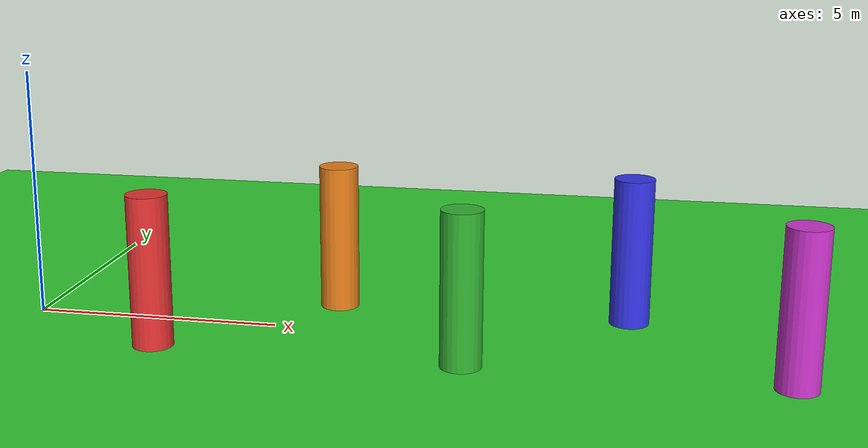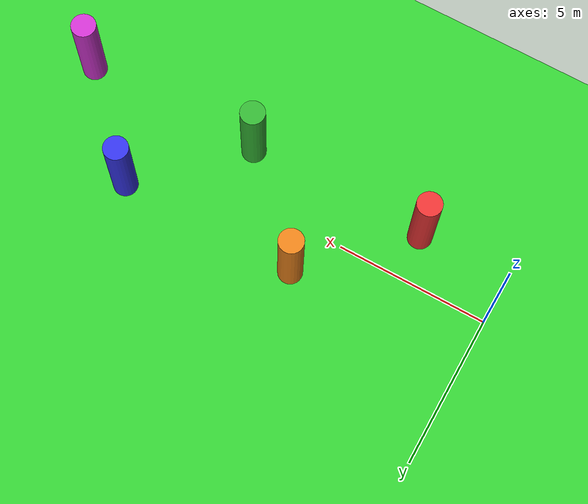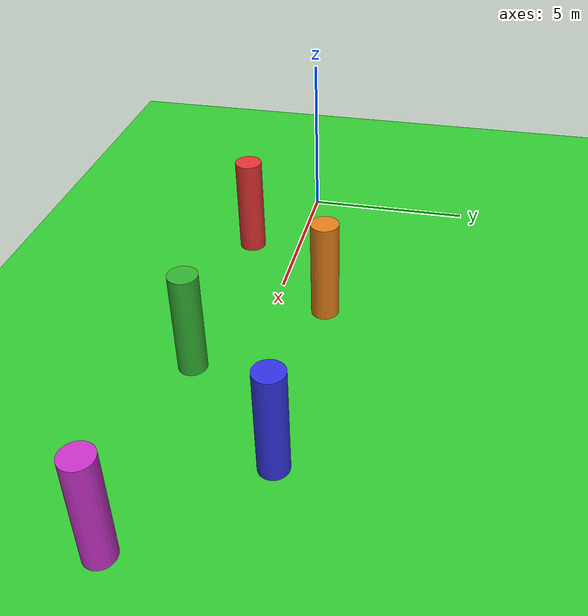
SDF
<sdf version="1.5">
 <world name="mrsim">
  <plugin filename="gz-sim-sensors-system" name="gz::sim::systems::Sensors">
   <render_engine>ogre2</render_engine>
  </plugin>
  <physics name="1ms" type="unused">
   <max_step_size>0.002000</max_step_size>
   <real_time_factor>1.000000</real_time_factor>
   <real_time_update_rate>500.000000</real_time_update_rate>
   <gravity>0 0 -9.81</gravity>
   <magnetic_field>23.816e-6 -0.41e-6 -39.829e-6</magnetic_field>
  </physics>
  <light type="directional" name="sun">
   <pose>0 0 10 0 0 0</pose>
   <diffuse>0.8 0.8 0.8 1</diffuse>
   <specular>0.2 0.2 0.2 1</specular>
   <attenuation>
    <range>1000</range>
    <constant>0.9</constant>
    <linear>0.01</linear>
    <quadratic>0.001</quadratic>
   </attenuation>
   <direction>-0.5 0.1 -0.9</direction>
  </light>
  <model name="ground_plane">
   <static>true</static>
   <link name="link">
    <collision name="collision">
     <geometry><plane><normal>0 0 1.0</normal><size>100 100</size></plane></geometry>
    </collision>
    <visual name="visual">
     <geometry><plane><normal>0 0 1.0</normal><size>100 100</size></plane></geometry>
     <material>
      <ambient>0.2 0.8 0.2 1</ambient>
      <diffuse>0.2 0.8 0.2 1</diffuse>
      <specular>0.2 0.8 0.2 1</specular>
     </material>
    </visual>
   </link>
  </model>
  <model name="obstacle_1">
   <static>true</static>
   <pose>3.0 -1.5 1.5 0 0 0</pose>
   <link name="link">
    <collision name="collision">
     <geometry><cylinder><radius>0.4</radius><length>3.0</length></cylinder></geometry>
    </collision>
    <visual name="visual">
     <geometry><cylinder><radius>0.4</radius><length>3.0</length></cylinder></geometry>
     <material><ambient>0.9 0.2 0.2 1</ambient><diffuse>0.9 0.2 0.2 1</diffuse></material>
    </visual>
   </link>
  </model>
  <model name="obstacle_2">
   <static>true</static>
   <pose>6.0 1.5 1.5 0 0 0</pose>
   <link name="link">
    <collision name="collision">
     <geometry><cylinder><radius>0.4</radius><length>3.0</length></cylinder></geometry>
    </collision>
    <visual name="visual">
     <geometry><cylinder><radius>0.4</radius><length>3.0</length></cylinder></geometry>
     <material><ambient>0.9 0.5 0.1 1</ambient><diffuse>0.9 0.5 0.1 1</diffuse></material>
    </visual>
   </link>
  </model>
  <model name="obstacle_3">
   <static>true</static>
   <pose>9.0 -1.5 1.5 0 0 0</pose>
   <link name="link">
    <collision name="collision">
     <geometry><cylinder><radius>0.4</radius><length>3.0</length></cylinder></geometry>
    </collision>
    <visual name="visual">
     <geometry><cylinder><radius>0.4</radius><length>3.0</length></cylinder></geometry>
     <material><ambient>0.2 0.7 0.2 1</ambient><diffuse>0.2 0.7 0.2 1</diffuse></material>
    </visual>
   </link>
  </model>
  <model name="obstacle_4">
   <static>true</static>
   <pose>12.0 1.5 1.5 0 0 0</pose>
   <link name="link">
    <collision name="collision">
     <geometry><cylinder><radius>0.4</radius><length>3.0</length></cylinder></geometry>
    </collision>
    <visual name="visual">
     <geometry><cylinder><radius>0.4</radius><length>3.0</length></cylinder></geometry>
     <material><ambient>0.2 0.2 0.9 1</ambient><diffuse>0.2 0.2 0.9 1</diffuse></material>
    </visual>
   </link>
  </model>
  <model name="obstacle_5">
   <static>true</static>
   <pose>15.0 -1.5 1.5 0 0 0</pose>
   <link name="link">
    <collision name="collision">
     <geometry><cylinder><radius>0.4</radius><length>3.0</length></cylinder></geometry>
    </collision>
    <visual name="visual">
     <geometry><cylinder><radius>0.4</radius><length>3.0</length></cylinder></geometry>
     <material><ambient>0.8 0.2 0.8 1</ambient><diffuse>0.8 0.2 0.8 1</diffuse></material>
    </visual>
   </link>
  </model>
  <plugin name="optitrack" filename="optitrack-gazebo.so">
   <hz>100</hz>
   <port>1509</port>
   <publish><link>qr4::base</link><name>QR_4</name></publish>
  </plugin>
 </world>
</sdf>
